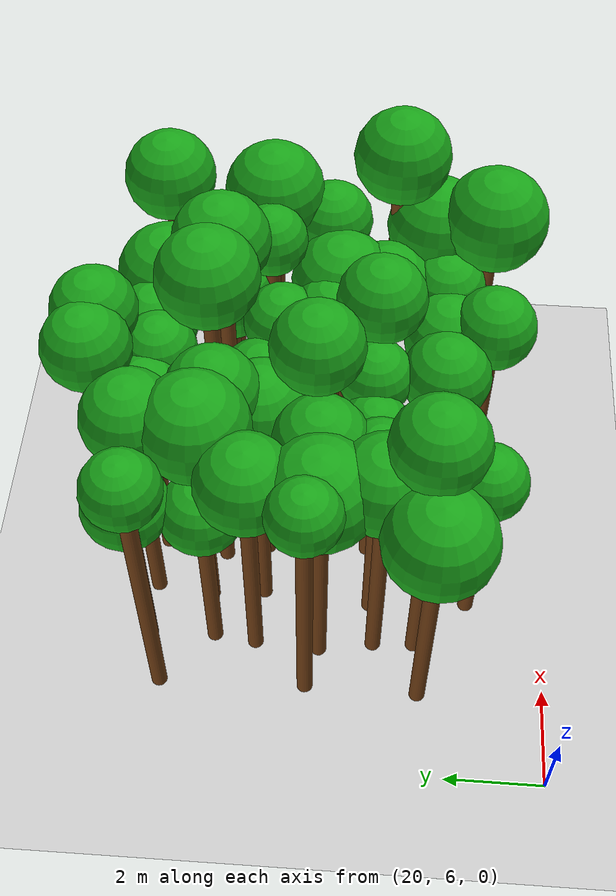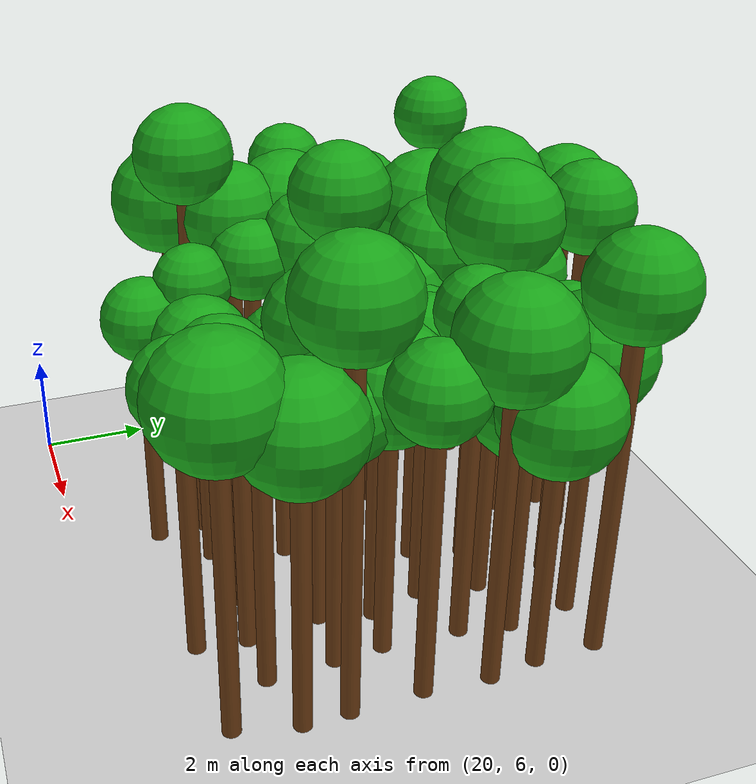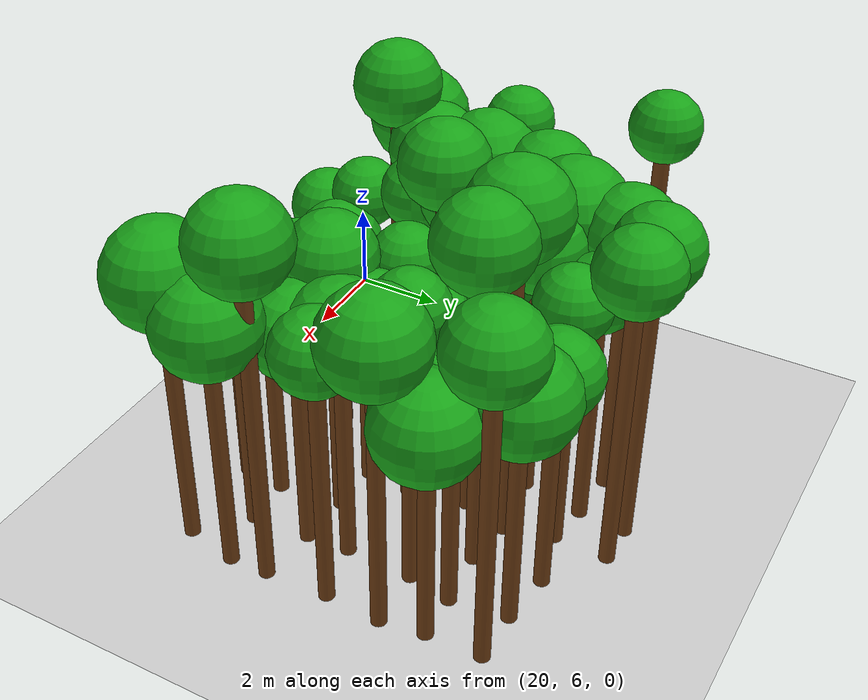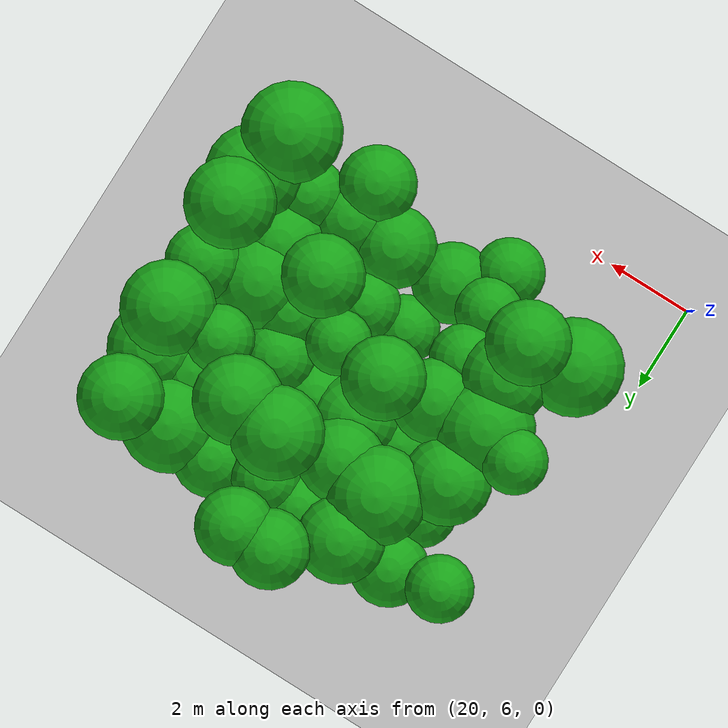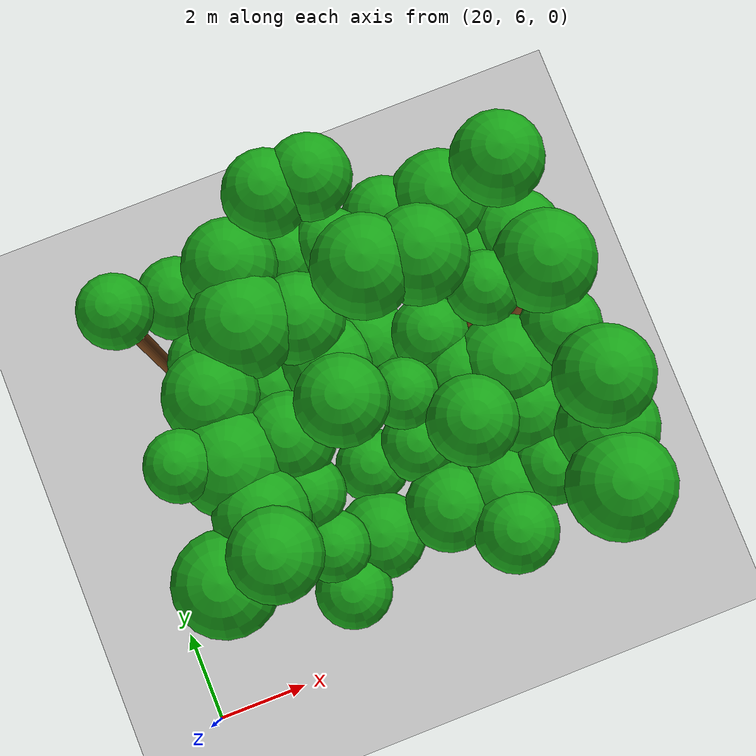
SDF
<sdf version="1.6">
 <world name="forest_world">
  <include><uri>model://sun</uri></include>
  <include><uri>model://ground_plane</uri></include>
  <model name="tree_2597_trunk">
   <static>true</static>
   <pose>21.78 8.55 2.72 0 0 0</pose>
   <link name="link">
    <collision name="collision">
     <geometry><cylinder><radius>0.16</radius><length>5.45</length></cylinder></geometry>
    </collision>
    <visual name="visual">
     <geometry><cylinder><radius>0.16</radius><length>5.45</length></cylinder></geometry>
     <material><ambient>0.35 0.20 0.05 1</ambient><diffuse>0.45 0.25 0.08 1</diffuse></material>
    </visual>
   </link>
  </model>
  <model name="tree_2597_leaf">
   <static>true</static>
   <pose>21.78 8.55 6.07 0 0 0</pose>
   <link name="link">
    <collision name="collision"><geometry><sphere><radius>1.04</radius></sphere></geometry></collision>
    <visual name="visual">
     <geometry><sphere><radius>1.04</radius></sphere></geometry>
     <material><ambient>0.05 0.45 0.05 1</ambient><diffuse>0.10 0.65 0.10 1</diffuse></material>
    </visual>
   </link>
  </model>
  <model name="tree_2599_trunk">
   <static>true</static>
   <pose>21.82 10.85 3.06 0 0 0</pose>
   <link name="link">
    <collision name="collision">
     <geometry><cylinder><radius>0.16</radius><length>6.13</length></cylinder></geometry>
    </collision>
    <visual name="visual">
     <geometry><cylinder><radius>0.16</radius><length>6.13</length></cylinder></geometry>
     <material><ambient>0.35 0.20 0.05 1</ambient><diffuse>0.45 0.25 0.08 1</diffuse></material>
    </visual>
   </link>
  </model>
  <model name="tree_2599_leaf">
   <static>true</static>
   <pose>21.82 10.85 6.55 0 0 0</pose>
   <link name="link">
    <collision name="collision"><geometry><sphere><radius>0.70</radius></sphere></geometry></collision>
    <visual name="visual">
     <geometry><sphere><radius>0.70</radius></sphere></geometry>
     <material><ambient>0.05 0.45 0.05 1</ambient><diffuse>0.10 0.65 0.10 1</diffuse></material>
    </visual>
   </link>
  </model>
  <model name="tree_2602_trunk">
   <static>true</static>
   <pose>21.76 13.84 3.36 0 0 0</pose>
   <link name="link">
    <collision name="collision">
     <geometry><cylinder><radius>0.16</radius><length>6.72</length></cylinder></geometry>
    </collision>
    <visual name="visual">
     <geometry><cylinder><radius>0.16</radius><length>6.72</length></cylinder></geometry>
     <material><ambient>0.35 0.20 0.05 1</ambient><diffuse>0.45 0.25 0.08 1</diffuse></material>
    </visual>
   </link>
  </model>
  <model name="tree_2602_leaf">
   <static>true</static>
   <pose>21.76 13.84 7.14 0 0 0</pose>
   <link name="link">
    <collision name="collision"><geometry><sphere><radius>0.71</radius></sphere></geometry></collision>
    <visual name="visual">
     <geometry><sphere><radius>0.71</radius></sphere></geometry>
     <material><ambient>0.05 0.45 0.05 1</ambient><diffuse>0.10 0.65 0.10 1</diffuse></material>
    </visual>
   </link>
  </model>
  <model name="tree_2652_trunk">
   <static>true</static>
   <pose>22.90 8.66 3.38 0 0 0</pose>
   <link name="link">
    <collision name="collision">
     <geometry><cylinder><radius>0.16</radius><length>6.76</length></cylinder></geometry>
    </collision>
    <visual name="visual">
     <geometry><cylinder><radius>0.16</radius><length>6.76</length></cylinder></geometry>
     <material><ambient>0.35 0.20 0.05 1</ambient><diffuse>0.45 0.25 0.08 1</diffuse></material>
    </visual>
   </link>
  </model>
  <model name="tree_2652_leaf">
   <static>true</static>
   <pose>22.90 8.66 7.30 0 0 0</pose>
   <link name="link">
    <collision name="collision"><geometry><sphere><radius>0.89</radius></sphere></geometry></collision>
    <visual name="visual">
     <geometry><sphere><radius>0.89</radius></sphere></geometry>
     <material><ambient>0.05 0.45 0.05 1</ambient><diffuse>0.10 0.65 0.10 1</diffuse></material>
    </visual>
   </link>
  </model>
  <model name="tree_2653_trunk">
   <static>true</static>
   <pose>22.86 9.50 2.75 0 0 0</pose>
   <link name="link">
    <collision name="collision">
     <geometry><cylinder><radius>0.16</radius><length>5.50</length></cylinder></geometry>
    </collision>
    <visual name="visual">
     <geometry><cylinder><radius>0.16</radius><length>5.50</length></cylinder></geometry>
     <material><ambient>0.35 0.20 0.05 1</ambient><diffuse>0.45 0.25 0.08 1</diffuse></material>
    </visual>
   </link>
  </model>
  <model name="tree_2653_leaf">
   <static>true</static>
   <pose>22.86 9.50 6.07 0 0 0</pose>
   <link name="link">
    <collision name="collision"><geometry><sphere><radius>0.95</radius></sphere></geometry></collision>
    <visual name="visual">
     <geometry><sphere><radius>0.95</radius></sphere></geometry>
     <material><ambient>0.05 0.45 0.05 1</ambient><diffuse>0.10 0.65 0.10 1</diffuse></material>
    </visual>
   </link>
  </model>
  <model name="tree_2654_trunk">
   <static>true</static>
   <pose>22.67 10.62 2.66 0 0 0</pose>
   <link name="link">
    <collision name="collision">
     <geometry><cylinder><radius>0.16</radius><length>5.33</length></cylinder></geometry>
    </collision>
    <visual name="visual">
     <geometry><cylinder><radius>0.16</radius><length>5.33</length></cylinder></geometry>
     <material><ambient>0.35 0.20 0.05 1</ambient><diffuse>0.45 0.25 0.08 1</diffuse></material>
    </visual>
   </link>
  </model>
  <model name="tree_2654_leaf">
   <static>true</static>
   <pose>22.67 10.62 5.97 0 0 0</pose>
   <link name="link">
    <collision name="collision"><geometry><sphere><radius>1.07</radius></sphere></geometry></collision>
    <visual name="visual">
     <geometry><sphere><radius>1.07</radius></sphere></geometry>
     <material><ambient>0.05 0.45 0.05 1</ambient><diffuse>0.10 0.65 0.10 1</diffuse></material>
    </visual>
   </link>
  </model>
  <model name="tree_2655_trunk">
   <static>true</static>
   <pose>22.75 11.94 2.72 0 0 0</pose>
   <link name="link">
    <collision name="collision">
     <geometry><cylinder><radius>0.16</radius><length>5.45</length></cylinder></geometry>
    </collision>
    <visual name="visual">
     <geometry><cylinder><radius>0.16</radius><length>5.45</length></cylinder></geometry>
     <material><ambient>0.35 0.20 0.05 1</ambient><diffuse>0.45 0.25 0.08 1</diffuse></material>
    </visual>
   </link>
  </model>
  <model name="tree_2655_leaf">
   <static>true</static>
   <pose>22.75 11.94 6.01 0 0 0</pose>
   <link name="link">
    <collision name="collision"><geometry><sphere><radius>0.94</radius></sphere></geometry></collision>
    <visual name="visual">
     <geometry><sphere><radius>0.94</radius></sphere></geometry>
     <material><ambient>0.05 0.45 0.05 1</ambient><diffuse>0.10 0.65 0.10 1</diffuse></material>
    </visual>
   </link>
  </model>
  <model name="tree_2656_trunk">
   <static>true</static>
   <pose>22.86 12.80 2.16 0 0 0</pose>
   <link name="link">
    <collision name="collision">
     <geometry><cylinder><radius>0.16</radius><length>4.31</length></cylinder></geometry>
    </collision>
    <visual name="visual">
     <geometry><cylinder><radius>0.16</radius><length>4.31</length></cylinder></geometry>
     <material><ambient>0.35 0.20 0.05 1</ambient><diffuse>0.45 0.25 0.08 1</diffuse></material>
    </visual>
   </link>
  </model>
  <model name="tree_2656_leaf">
   <static>true</static>
   <pose>22.86 12.80 4.79 0 0 0</pose>
   <link name="link">
    <collision name="collision"><geometry><sphere><radius>0.80</radius></sphere></geometry></collision>
    <visual name="visual">
     <geometry><sphere><radius>0.80</radius></sphere></geometry>
     <material><ambient>0.05 0.45 0.05 1</ambient><diffuse>0.10 0.65 0.10 1</diffuse></material>
    </visual>
   </link>
  </model>
  <model name="tree_2657_trunk">
   <static>true</static>
   <pose>22.78 14.15 2.26 0 0 0</pose>
   <link name="link">
    <collision name="collision">
     <geometry><cylinder><radius>0.16</radius><length>4.52</length></cylinder></geometry>
    </collision>
    <visual name="visual">
     <geometry><cylinder><radius>0.16</radius><length>4.52</length></cylinder></geometry>
     <material><ambient>0.35 0.20 0.05 1</ambient><diffuse>0.45 0.25 0.08 1</diffuse></material>
    </visual>
   </link>
  </model>
  <model name="tree_2657_leaf">
   <static>true</static>
   <pose>22.78 14.15 5.02 0 0 0</pose>
   <link name="link">
    <collision name="collision"><geometry><sphere><radius>0.84</radius></sphere></geometry></collision>
    <visual name="visual">
     <geometry><sphere><radius>0.84</radius></sphere></geometry>
     <material><ambient>0.05 0.45 0.05 1</ambient><diffuse>0.10 0.65 0.10 1</diffuse></material>
    </visual>
   </link>
  </model>
  <model name="tree_2706_trunk">
   <static>true</static>
   <pose>23.92 7.57 2.14 0 0 0</pose>
   <link name="link">
    <collision name="collision">
     <geometry><cylinder><radius>0.16</radius><length>4.28</length></cylinder></geometry>
    </collision>
    <visual name="visual">
     <geometry><cylinder><radius>0.16</radius><length>4.28</length></cylinder></geometry>
     <material><ambient>0.35 0.20 0.05 1</ambient><diffuse>0.45 0.25 0.08 1</diffuse></material>
    </visual>
   </link>
  </model>
  <model name="tree_2706_leaf">
   <static>true</static>
   <pose>23.92 7.57 4.74 0 0 0</pose>
   <link name="link">
    <collision name="collision"><geometry><sphere><radius>0.76</radius></sphere></geometry></collision>
    <visual name="visual">
     <geometry><sphere><radius>0.76</radius></sphere></geometry>
     <material><ambient>0.05 0.45 0.05 1</ambient><diffuse>0.10 0.65 0.10 1</diffuse></material>
    </visual>
   </link>
  </model>
  <model name="tree_2707_trunk">
   <static>true</static>
   <pose>23.89 8.49 2.43 0 0 0</pose>
   <link name="link">
    <collision name="collision">
     <geometry><cylinder><radius>0.16</radius><length>4.87</length></cylinder></geometry>
    </collision>
    <visual name="visual">
     <geometry><cylinder><radius>0.16</radius><length>4.87</length></cylinder></geometry>
     <material><ambient>0.35 0.20 0.05 1</ambient><diffuse>0.45 0.25 0.08 1</diffuse></material>
    </visual>
   </link>
  </model>
  <model name="tree_2707_leaf">
   <static>true</static>
   <pose>23.89 8.49 5.29 0 0 0</pose>
   <link name="link">
    <collision name="collision"><geometry><sphere><radius>0.71</radius></sphere></geometry></collision>
    <visual name="visual">
     <geometry><sphere><radius>0.71</radius></sphere></geometry>
     <material><ambient>0.05 0.45 0.05 1</ambient><diffuse>0.10 0.65 0.10 1</diffuse></material>
    </visual>
   </link>
  </model>
  <model name="tree_2708_trunk">
   <static>true</static>
   <pose>23.77 9.61 2.54 0 0 0</pose>
   <link name="link">
    <collision name="collision">
     <geometry><cylinder><radius>0.16</radius><length>5.08</length></cylinder></geometry>
    </collision>
    <visual name="visual">
     <geometry><cylinder><radius>0.16</radius><length>5.08</length></cylinder></geometry>
     <material><ambient>0.35 0.20 0.05 1</ambient><diffuse>0.45 0.25 0.08 1</diffuse></material>
    </visual>
   </link>
  </model>
  <model name="tree_2708_leaf">
   <static>true</static>
   <pose>23.77 9.61 5.54 0 0 0</pose>
   <link name="link">
    <collision name="collision"><geometry><sphere><radius>0.76</radius></sphere></geometry></collision>
    <visual name="visual">
     <geometry><sphere><radius>0.76</radius></sphere></geometry>
     <material><ambient>0.05 0.45 0.05 1</ambient><diffuse>0.10 0.65 0.10 1</diffuse></material>
    </visual>
   </link>
  </model>
  <model name="tree_2709_trunk">
   <static>true</static>
   <pose>23.85 10.69 2.63 0 0 0</pose>
   <link name="link">
    <collision name="collision">
     <geometry><cylinder><radius>0.16</radius><length>5.26</length></cylinder></geometry>
    </collision>
    <visual name="visual">
     <geometry><cylinder><radius>0.16</radius><length>5.26</length></cylinder></geometry>
     <material><ambient>0.35 0.20 0.05 1</ambient><diffuse>0.45 0.25 0.08 1</diffuse></material>
    </visual>
   </link>
  </model>
  <model name="tree_2709_leaf">
   <static>true</static>
   <pose>23.85 10.69 5.81 0 0 0</pose>
   <link name="link">
    <collision name="collision"><geometry><sphere><radius>0.91</radius></sphere></geometry></collision>
    <visual name="visual">
     <geometry><sphere><radius>0.91</radius></sphere></geometry>
     <material><ambient>0.05 0.45 0.05 1</ambient><diffuse>0.10 0.65 0.10 1</diffuse></material>
    </visual>
   </link>
  </model>
  <model name="tree_2710_trunk">
   <static>true</static>
   <pose>23.95 11.85 2.00 0 0 0</pose>
   <link name="link">
    <collision name="collision">
     <geometry><cylinder><radius>0.16</radius><length>4.00</length></cylinder></geometry>
    </collision>
    <visual name="visual">
     <geometry><cylinder><radius>0.16</radius><length>4.00</length></cylinder></geometry>
     <material><ambient>0.35 0.20 0.05 1</ambient><diffuse>0.45 0.25 0.08 1</diffuse></material>
    </visual>
   </link>
  </model>
  <model name="tree_2710_leaf">
   <static>true</static>
   <pose>23.95 11.85 4.57 0 0 0</pose>
   <link name="link">
    <collision name="collision"><geometry><sphere><radius>0.94</radius></sphere></geometry></collision>
    <visual name="visual">
     <geometry><sphere><radius>0.94</radius></sphere></geometry>
     <material><ambient>0.05 0.45 0.05 1</ambient><diffuse>0.10 0.65 0.10 1</diffuse></material>
    </visual>
   </link>
  </model>
  <model name="tree_2711_trunk">
   <static>true</static>
   <pose>23.82 12.96 2.74 0 0 0</pose>
   <link name="link">
    <collision name="collision">
     <geometry><cylinder><radius>0.16</radius><length>5.48</length></cylinder></geometry>
    </collision>
    <visual name="visual">
     <geometry><cylinder><radius>0.16</radius><length>5.48</length></cylinder></geometry>
     <material><ambient>0.35 0.20 0.05 1</ambient><diffuse>0.45 0.25 0.08 1</diffuse></material>
    </visual>
   </link>
  </model>
  <model name="tree_2711_leaf">
   <static>true</static>
   <pose>23.82 12.96 6.12 0 0 0</pose>
   <link name="link">
    <collision name="collision"><geometry><sphere><radius>1.06</radius></sphere></geometry></collision>
    <visual name="visual">
     <geometry><sphere><radius>1.06</radius></sphere></geometry>
     <material><ambient>0.05 0.45 0.05 1</ambient><diffuse>0.10 0.65 0.10 1</diffuse></material>
    </visual>
   </link>
  </model>
  <model name="tree_2712_trunk">
   <static>true</static>
   <pose>23.97 14.13 2.76 0 0 0</pose>
   <link name="link">
    <collision name="collision">
     <geometry><cylinder><radius>0.16</radius><length>5.52</length></cylinder></geometry>
    </collision>
    <visual name="visual">
     <geometry><cylinder><radius>0.16</radius><length>5.52</length></cylinder></geometry>
     <material><ambient>0.35 0.20 0.05 1</ambient><diffuse>0.45 0.25 0.08 1</diffuse></material>
    </visual>
   </link>
  </model>
  <model name="tree_2712_leaf">
   <static>true</static>
   <pose>23.97 14.13 6.08 0 0 0</pose>
   <link name="link">
    <collision name="collision"><geometry><sphere><radius>0.93</radius></sphere></geometry></collision>
    <visual name="visual">
     <geometry><sphere><radius>0.93</radius></sphere></geometry>
     <material><ambient>0.05 0.45 0.05 1</ambient><diffuse>0.10 0.65 0.10 1</diffuse></material>
    </visual>
   </link>
  </model>
  <model name="tree_2762_trunk">
   <static>true</static>
   <pose>24.82 8.38 2.02 0 0 0</pose>
   <link name="link">
    <collision name="collision">
     <geometry><cylinder><radius>0.16</radius><length>4.04</length></cylinder></geometry>
    </collision>
    <visual name="visual">
     <geometry><cylinder><radius>0.16</radius><length>4.04</length></cylinder></geometry>
     <material><ambient>0.35 0.20 0.05 1</ambient><diffuse>0.45 0.25 0.08 1</diffuse></material>
    </visual>
   </link>
  </model>
  <model name="tree_2762_leaf">
   <static>true</static>
   <pose>24.82 8.38 4.56 0 0 0</pose>
   <link name="link">
    <collision name="collision"><geometry><sphere><radius>0.88</radius></sphere></geometry></collision>
    <visual name="visual">
     <geometry><sphere><radius>0.88</radius></sphere></geometry>
     <material><ambient>0.05 0.45 0.05 1</ambient><diffuse>0.10 0.65 0.10 1</diffuse></material>
    </visual>
   </link>
  </model>
  <model name="tree_2763_trunk">
   <static>true</static>
   <pose>25.15 9.73 2.03 0 0 0</pose>
   <link name="link">
    <collision name="collision">
     <geometry><cylinder><radius>0.16</radius><length>4.05</length></cylinder></geometry>
    </collision>
    <visual name="visual">
     <geometry><cylinder><radius>0.16</radius><length>4.05</length></cylinder></geometry>
     <material><ambient>0.35 0.20 0.05 1</ambient><diffuse>0.45 0.25 0.08 1</diffuse></material>
    </visual>
   </link>
  </model>
  <model name="tree_2763_leaf">
   <static>true</static>
   <pose>25.15 9.73 4.50 0 0 0</pose>
   <link name="link">
    <collision name="collision"><geometry><sphere><radius>0.74</radius></sphere></geometry></collision>
    <visual name="visual">
     <geometry><sphere><radius>0.74</radius></sphere></geometry>
     <material><ambient>0.05 0.45 0.05 1</ambient><diffuse>0.10 0.65 0.10 1</diffuse></material>
    </visual>
   </link>
  </model>
  <model name="tree_2764_trunk">
   <static>true</static>
   <pose>25.00 10.83 3.29 0 0 0</pose>
   <link name="link">
    <collision name="collision">
     <geometry><cylinder><radius>0.16</radius><length>6.57</length></cylinder></geometry>
    </collision>
    <visual name="visual">
     <geometry><cylinder><radius>0.16</radius><length>6.57</length></cylinder></geometry>
     <material><ambient>0.35 0.20 0.05 1</ambient><diffuse>0.45 0.25 0.08 1</diffuse></material>
    </visual>
   </link>
  </model>
  <model name="tree_2764_leaf">
   <static>true</static>
   <pose>25.00 10.83 7.10 0 0 0</pose>
   <link name="link">
    <collision name="collision"><geometry><sphere><radius>0.88</radius></sphere></geometry></collision>
    <visual name="visual">
     <geometry><sphere><radius>0.88</radius></sphere></geometry>
     <material><ambient>0.05 0.45 0.05 1</ambient><diffuse>0.10 0.65 0.10 1</diffuse></material>
    </visual>
   </link>
  </model>
  <model name="tree_2765_trunk">
   <static>true</static>
   <pose>25.06 11.86 2.30 0 0 0</pose>
   <link name="link">
    <collision name="collision">
     <geometry><cylinder><radius>0.16</radius><length>4.60</length></cylinder></geometry>
    </collision>
    <visual name="visual">
     <geometry><cylinder><radius>0.16</radius><length>4.60</length></cylinder></geometry>
     <material><ambient>0.35 0.20 0.05 1</ambient><diffuse>0.45 0.25 0.08 1</diffuse></material>
    </visual>
   </link>
  </model>
  <model name="tree_2765_leaf">
   <static>true</static>
   <pose>25.06 11.86 5.16 0 0 0</pose>
   <link name="link">
    <collision name="collision"><geometry><sphere><radius>0.94</radius></sphere></geometry></collision>
    <visual name="visual">
     <geometry><sphere><radius>0.94</radius></sphere></geometry>
     <material><ambient>0.05 0.45 0.05 1</ambient><diffuse>0.10 0.65 0.10 1</diffuse></material>
    </visual>
   </link>
  </model>
  <model name="tree_2766_trunk">
   <static>true</static>
   <pose>24.83 12.75 2.65 0 0 0</pose>
   <link name="link">
    <collision name="collision">
     <geometry><cylinder><radius>0.16</radius><length>5.30</length></cylinder></geometry>
    </collision>
    <visual name="visual">
     <geometry><cylinder><radius>0.16</radius><length>5.30</length></cylinder></geometry>
     <material><ambient>0.35 0.20 0.05 1</ambient><diffuse>0.45 0.25 0.08 1</diffuse></material>
    </visual>
   </link>
  </model>
  <model name="tree_2766_leaf">
   <static>true</static>
   <pose>24.83 12.75 5.84 0 0 0</pose>
   <link name="link">
    <collision name="collision"><geometry><sphere><radius>0.91</radius></sphere></geometry></collision>
    <visual name="visual">
     <geometry><sphere><radius>0.91</radius></sphere></geometry>
     <material><ambient>0.05 0.45 0.05 1</ambient><diffuse>0.10 0.65 0.10 1</diffuse></material>
    </visual>
   </link>
  </model>
  <model name="tree_2767_trunk">
   <static>true</static>
   <pose>25.06 14.05 2.47 0 0 0</pose>
   <link name="link">
    <collision name="collision">
     <geometry><cylinder><radius>0.16</radius><length>4.93</length></cylinder></geometry>
    </collision>
    <visual name="visual">
     <geometry><cylinder><radius>0.16</radius><length>4.93</length></cylinder></geometry>
     <material><ambient>0.35 0.20 0.05 1</ambient><diffuse>0.45 0.25 0.08 1</diffuse></material>
    </visual>
   </link>
  </model>
  <model name="tree_2767_leaf">
   <static>true</static>
   <pose>25.06 14.05 5.39 0 0 0</pose>
   <link name="link">
    <collision name="collision"><geometry><sphere><radius>0.76</radius></sphere></geometry></collision>
    <visual name="visual">
     <geometry><sphere><radius>0.76</radius></sphere></geometry>
     <material><ambient>0.05 0.45 0.05 1</ambient><diffuse>0.10 0.65 0.10 1</diffuse></material>
    </visual>
   </link>
  </model>
  <model name="tree_2768_trunk">
   <static>true</static>
   <pose>25.11 15.03 3.06 0 0 0</pose>
   <link name="link">
    <collision name="collision">
     <geometry><cylinder><radius>0.16</radius><length>6.12</length></cylinder></geometry>
    </collision>
    <visual name="visual">
     <geometry><cylinder><radius>0.16</radius><length>6.12</length></cylinder></geometry>
     <material><ambient>0.35 0.20 0.05 1</ambient><diffuse>0.45 0.25 0.08 1</diffuse></material>
    </visual>
   </link>
  </model>
  <model name="tree_2768_leaf">
   <static>true</static>
   <pose>25.11 15.03 6.63 0 0 0</pose>
   <link name="link">
    <collision name="collision"><geometry><sphere><radius>0.85</radius></sphere></geometry></collision>
    <visual name="visual">
     <geometry><sphere><radius>0.85</radius></sphere></geometry>
     <material><ambient>0.05 0.45 0.05 1</ambient><diffuse>0.10 0.65 0.10 1</diffuse></material>
    </visual>
   </link>
  </model>
  <model name="tree_2817_trunk">
   <static>true</static>
   <pose>26.25 8.39 2.17 0 0 0</pose>
   <link name="link">
    <collision name="collision">
     <geometry><cylinder><radius>0.16</radius><length>4.33</length></cylinder></geometry>
    </collision>
    <visual name="visual">
     <geometry><cylinder><radius>0.16</radius><length>4.33</length></cylinder></geometry>
     <material><ambient>0.35 0.20 0.05 1</ambient><diffuse>0.45 0.25 0.08 1</diffuse></material>
    </visual>
   </link>
  </model>
  <model name="tree_2817_leaf">
   <static>true</static>
   <pose>26.25 8.39 4.87 0 0 0</pose>
   <link name="link">
    <collision name="collision"><geometry><sphere><radius>0.89</radius></sphere></geometry></collision>
    <visual name="visual">
     <geometry><sphere><radius>0.89</radius></sphere></geometry>
     <material><ambient>0.05 0.45 0.05 1</ambient><diffuse>0.10 0.65 0.10 1</diffuse></material>
    </visual>
   </link>
  </model>
  <model name="tree_2818_trunk">
   <static>true</static>
   <pose>26.12 9.76 2.23 0 0 0</pose>
   <link name="link">
    <collision name="collision">
     <geometry><cylinder><radius>0.16</radius><length>4.46</length></cylinder></geometry>
    </collision>
    <visual name="visual">
     <geometry><cylinder><radius>0.16</radius><length>4.46</length></cylinder></geometry>
     <material><ambient>0.35 0.20 0.05 1</ambient><diffuse>0.45 0.25 0.08 1</diffuse></material>
    </visual>
   </link>
  </model>
  <model name="tree_2818_leaf">
   <static>true</static>
   <pose>26.12 9.76 4.91 0 0 0</pose>
   <link name="link">
    <collision name="collision"><geometry><sphere><radius>0.75</radius></sphere></geometry></collision>
    <visual name="visual">
     <geometry><sphere><radius>0.75</radius></sphere></geometry>
     <material><ambient>0.05 0.45 0.05 1</ambient><diffuse>0.10 0.65 0.10 1</diffuse></material>
    </visual>
   </link>
  </model>
  <model name="tree_2819_trunk">
   <static>true</static>
   <pose>26.17 10.71 2.63 0 0 0</pose>
   <link name="link">
    <collision name="collision">
     <geometry><cylinder><radius>0.16</radius><length>5.26</length></cylinder></geometry>
    </collision>
    <visual name="visual">
     <geometry><cylinder><radius>0.16</radius><length>5.26</length></cylinder></geometry>
     <material><ambient>0.35 0.20 0.05 1</ambient><diffuse>0.45 0.25 0.08 1</diffuse></material>
    </visual>
   </link>
  </model>
  <model name="tree_2819_leaf">
   <static>true</static>
   <pose>26.17 10.71 5.68 0 0 0</pose>
   <link name="link">
    <collision name="collision"><geometry><sphere><radius>0.70</radius></sphere></geometry></collision>
    <visual name="visual">
     <geometry><sphere><radius>0.70</radius></sphere></geometry>
     <material><ambient>0.05 0.45 0.05 1</ambient><diffuse>0.10 0.65 0.10 1</diffuse></material>
    </visual>
   </link>
  </model>
  <model name="tree_2820_trunk">
   <static>true</static>
   <pose>25.96 11.95 2.08 0 0 0</pose>
   <link name="link">
    <collision name="collision">
     <geometry><cylinder><radius>0.16</radius><length>4.15</length></cylinder></geometry>
    </collision>
    <visual name="visual">
     <geometry><cylinder><radius>0.16</radius><length>4.15</length></cylinder></geometry>
     <material><ambient>0.35 0.20 0.05 1</ambient><diffuse>0.45 0.25 0.08 1</diffuse></material>
    </visual>
   </link>
  </model>
  <model name="tree_2820_leaf">
   <static>true</static>
   <pose>25.96 11.95 4.70 0 0 0</pose>
   <link name="link">
    <collision name="collision"><geometry><sphere><radius>0.92</radius></sphere></geometry></collision>
    <visual name="visual">
     <geometry><sphere><radius>0.92</radius></sphere></geometry>
     <material><ambient>0.05 0.45 0.05 1</ambient><diffuse>0.10 0.65 0.10 1</diffuse></material>
    </visual>
   </link>
  </model>
  <model name="tree_2821_trunk">
   <static>true</static>
   <pose>26.24 12.91 3.41 0 0 0</pose>
   <link name="link">
    <collision name="collision">
     <geometry><cylinder><radius>0.16</radius><length>6.81</length></cylinder></geometry>
    </collision>
    <visual name="visual">
     <geometry><cylinder><radius>0.16</radius><length>6.81</length></cylinder></geometry>
     <material><ambient>0.35 0.20 0.05 1</ambient><diffuse>0.45 0.25 0.08 1</diffuse></material>
    </visual>
   </link>
  </model>
  <model name="tree_2821_leaf">
   <static>true</static>
   <pose>26.24 12.91 7.40 0 0 0</pose>
   <link name="link">
    <collision name="collision"><geometry><sphere><radius>0.98</radius></sphere></geometry></collision>
    <visual name="visual">
     <geometry><sphere><radius>0.98</radius></sphere></geometry>
     <material><ambient>0.05 0.45 0.05 1</ambient><diffuse>0.10 0.65 0.10 1</diffuse></material>
    </visual>
   </link>
  </model>
  <model name="tree_2822_trunk">
   <static>true</static>
   <pose>25.94 13.90 2.59 0 0 0</pose>
   <link name="link">
    <collision name="collision">
     <geometry><cylinder><radius>0.16</radius><length>5.19</length></cylinder></geometry>
    </collision>
    <visual name="visual">
     <geometry><cylinder><radius>0.16</radius><length>5.19</length></cylinder></geometry>
     <material><ambient>0.35 0.20 0.05 1</ambient><diffuse>0.45 0.25 0.08 1</diffuse></material>
    </visual>
   </link>
  </model>
  <model name="tree_2822_leaf">
   <static>true</static>
   <pose>25.94 13.90 5.63 0 0 0</pose>
   <link name="link">
    <collision name="collision"><geometry><sphere><radius>0.74</radius></sphere></geometry></collision>
    <visual name="visual">
     <geometry><sphere><radius>0.74</radius></sphere></geometry>
     <material><ambient>0.05 0.45 0.05 1</ambient><diffuse>0.10 0.65 0.10 1</diffuse></material>
    </visual>
   </link>
  </model>
  <model name="tree_2823_trunk">
   <static>true</static>
   <pose>25.96 15.02 3.09 0 0 0</pose>
   <link name="link">
    <collision name="collision">
     <geometry><cylinder><radius>0.16</radius><length>6.18</length></cylinder></geometry>
    </collision>
    <visual name="visual">
     <geometry><cylinder><radius>0.16</radius><length>6.18</length></cylinder></geometry>
     <material><ambient>0.35 0.20 0.05 1</ambient><diffuse>0.45 0.25 0.08 1</diffuse></material>
    </visual>
   </link>
  </model>
  <model name="tree_2823_leaf">
   <static>true</static>
   <pose>25.96 15.02 6.67 0 0 0</pose>
   <link name="link">
    <collision name="collision"><geometry><sphere><radius>0.83</radius></sphere></geometry></collision>
    <visual name="visual">
     <geometry><sphere><radius>0.83</radius></sphere></geometry>
     <material><ambient>0.05 0.45 0.05 1</ambient><diffuse>0.10 0.65 0.10 1</diffuse></material>
    </visual>
   </link>
  </model>
  <model name="tree_2871_trunk">
   <static>true</static>
   <pose>27.25 7.49 2.36 0 0 0</pose>
   <link name="link">
    <collision name="collision">
     <geometry><cylinder><radius>0.16</radius><length>4.71</length></cylinder></geometry>
    </collision>
    <visual name="visual">
     <geometry><cylinder><radius>0.16</radius><length>4.71</length></cylinder></geometry>
     <material><ambient>0.35 0.20 0.05 1</ambient><diffuse>0.45 0.25 0.08 1</diffuse></material>
    </visual>
   </link>
  </model>
  <model name="tree_2871_leaf">
   <static>true</static>
   <pose>27.25 7.49 5.21 0 0 0</pose>
   <link name="link">
    <collision name="collision"><geometry><sphere><radius>0.84</radius></sphere></geometry></collision>
    <visual name="visual">
     <geometry><sphere><radius>0.84</radius></sphere></geometry>
     <material><ambient>0.05 0.45 0.05 1</ambient><diffuse>0.10 0.65 0.10 1</diffuse></material>
    </visual>
   </link>
  </model>
  <model name="tree_2872_trunk">
   <static>true</static>
   <pose>27.35 8.38 2.13 0 0 0</pose>
   <link name="link">
    <collision name="collision">
     <geometry><cylinder><radius>0.16</radius><length>4.26</length></cylinder></geometry>
    </collision>
    <visual name="visual">
     <geometry><cylinder><radius>0.16</radius><length>4.26</length></cylinder></geometry>
     <material><ambient>0.35 0.20 0.05 1</ambient><diffuse>0.45 0.25 0.08 1</diffuse></material>
    </visual>
   </link>
  </model>
  <model name="tree_2872_leaf">
   <static>true</static>
   <pose>27.35 8.38 4.79 0 0 0</pose>
   <link name="link">
    <collision name="collision"><geometry><sphere><radius>0.89</radius></sphere></geometry></collision>
    <visual name="visual">
     <geometry><sphere><radius>0.89</radius></sphere></geometry>
     <material><ambient>0.05 0.45 0.05 1</ambient><diffuse>0.10 0.65 0.10 1</diffuse></material>
    </visual>
   </link>
  </model>
  <model name="tree_2873_trunk">
   <static>true</static>
   <pose>27.18 9.72 2.72 0 0 0</pose>
   <link name="link">
    <collision name="collision">
     <geometry><cylinder><radius>0.16</radius><length>5.44</length></cylinder></geometry>
    </collision>
    <visual name="visual">
     <geometry><cylinder><radius>0.16</radius><length>5.44</length></cylinder></geometry>
     <material><ambient>0.35 0.20 0.05 1</ambient><diffuse>0.45 0.25 0.08 1</diffuse></material>
    </visual>
   </link>
  </model>
  <model name="tree_2873_leaf">
   <static>true</static>
   <pose>27.18 9.72 5.98 0 0 0</pose>
   <link name="link">
    <collision name="collision"><geometry><sphere><radius>0.89</radius></sphere></geometry></collision>
    <visual name="visual">
     <geometry><sphere><radius>0.89</radius></sphere></geometry>
     <material><ambient>0.05 0.45 0.05 1</ambient><diffuse>0.10 0.65 0.10 1</diffuse></material>
    </visual>
   </link>
  </model>
  <model name="tree_2874_trunk">
   <static>true</static>
   <pose>27.38 10.67 2.32 0 0 0</pose>
   <link name="link">
    <collision name="collision">
     <geometry><cylinder><radius>0.16</radius><length>4.63</length></cylinder></geometry>
    </collision>
    <visual name="visual">
     <geometry><cylinder><radius>0.16</radius><length>4.63</length></cylinder></geometry>
     <material><ambient>0.35 0.20 0.05 1</ambient><diffuse>0.45 0.25 0.08 1</diffuse></material>
    </visual>
   </link>
  </model>
  <model name="tree_2874_leaf">
   <static>true</static>
   <pose>27.38 10.67 5.15 0 0 0</pose>
   <link name="link">
    <collision name="collision"><geometry><sphere><radius>0.87</radius></sphere></geometry></collision>
    <visual name="visual">
     <geometry><sphere><radius>0.87</radius></sphere></geometry>
     <material><ambient>0.05 0.45 0.05 1</ambient><diffuse>0.10 0.65 0.10 1</diffuse></material>
    </visual>
   </link>
  </model>
  <model name="tree_2875_trunk">
   <static>true</static>
   <pose>27.09 11.64 2.39 0 0 0</pose>
   <link name="link">
    <collision name="collision">
     <geometry><cylinder><radius>0.16</radius><length>4.79</length></cylinder></geometry>
    </collision>
    <visual name="visual">
     <geometry><cylinder><radius>0.16</radius><length>4.79</length></cylinder></geometry>
     <material><ambient>0.35 0.20 0.05 1</ambient><diffuse>0.45 0.25 0.08 1</diffuse></material>
    </visual>
   </link>
  </model>
  <model name="tree_2875_leaf">
   <static>true</static>
   <pose>27.09 11.64 5.26 0 0 0</pose>
   <link name="link">
    <collision name="collision"><geometry><sphere><radius>0.78</radius></sphere></geometry></collision>
    <visual name="visual">
     <geometry><sphere><radius>0.78</radius></sphere></geometry>
     <material><ambient>0.05 0.45 0.05 1</ambient><diffuse>0.10 0.65 0.10 1</diffuse></material>
    </visual>
   </link>
  </model>
  <model name="tree_2876_trunk">
   <static>true</static>
   <pose>27.26 12.77 3.36 0 0 0</pose>
   <link name="link">
    <collision name="collision">
     <geometry><cylinder><radius>0.16</radius><length>6.71</length></cylinder></geometry>
    </collision>
    <visual name="visual">
     <geometry><cylinder><radius>0.16</radius><length>6.71</length></cylinder></geometry>
     <material><ambient>0.35 0.20 0.05 1</ambient><diffuse>0.45 0.25 0.08 1</diffuse></material>
    </visual>
   </link>
  </model>
  <model name="tree_2876_leaf">
   <static>true</static>
   <pose>27.26 12.77 7.28 0 0 0</pose>
   <link name="link">
    <collision name="collision"><geometry><sphere><radius>0.94</radius></sphere></geometry></collision>
    <visual name="visual">
     <geometry><sphere><radius>0.94</radius></sphere></geometry>
     <material><ambient>0.05 0.45 0.05 1</ambient><diffuse>0.10 0.65 0.10 1</diffuse></material>
    </visual>
   </link>
  </model>
  <model name="tree_2877_trunk">
   <static>true</static>
   <pose>27.13 14.17 2.25 0 0 0</pose>
   <link name="link">
    <collision name="collision">
     <geometry><cylinder><radius>0.16</radius><length>4.51</length></cylinder></geometry>
    </collision>
    <visual name="visual">
     <geometry><cylinder><radius>0.16</radius><length>4.51</length></cylinder></geometry>
     <material><ambient>0.35 0.20 0.05 1</ambient><diffuse>0.45 0.25 0.08 1</diffuse></material>
    </visual>
   </link>
  </model>
  <model name="tree_2877_leaf">
   <static>true</static>
   <pose>27.13 14.17 5.02 0 0 0</pose>
   <link name="link">
    <collision name="collision"><geometry><sphere><radius>0.85</radius></sphere></geometry></collision>
    <visual name="visual">
     <geometry><sphere><radius>0.85</radius></sphere></geometry>
     <material><ambient>0.05 0.45 0.05 1</ambient><diffuse>0.10 0.65 0.10 1</diffuse></material>
    </visual>
   </link>
  </model>
  <model name="tree_2927_trunk">
   <static>true</static>
   <pose>28.37 8.42 2.28 0 0 0</pose>
   <link name="link">
    <collision name="collision">
     <geometry><cylinder><radius>0.16</radius><length>4.57</length></cylinder></geometry>
    </collision>
    <visual name="visual">
     <geometry><cylinder><radius>0.16</radius><length>4.57</length></cylinder></geometry>
     <material><ambient>0.35 0.20 0.05 1</ambient><diffuse>0.45 0.25 0.08 1</diffuse></material>
    </visual>
   </link>
  </model>
  <model name="tree_2927_leaf">
   <static>true</static>
   <pose>28.37 8.42 5.04 0 0 0</pose>
   <link name="link">
    <collision name="collision"><geometry><sphere><radius>0.79</radius></sphere></geometry></collision>
    <visual name="visual">
     <geometry><sphere><radius>0.79</radius></sphere></geometry>
     <material><ambient>0.05 0.45 0.05 1</ambient><diffuse>0.10 0.65 0.10 1</diffuse></material>
    </visual>
   </link>
  </model>
  <model name="tree_2928_trunk">
   <static>true</static>
   <pose>28.30 9.64 2.24 0 0 0</pose>
   <link name="link">
    <collision name="collision">
     <geometry><cylinder><radius>0.16</radius><length>4.48</length></cylinder></geometry>
    </collision>
    <visual name="visual">
     <geometry><cylinder><radius>0.16</radius><length>4.48</length></cylinder></geometry>
     <material><ambient>0.35 0.20 0.05 1</ambient><diffuse>0.45 0.25 0.08 1</diffuse></material>
    </visual>
   </link>
  </model>
  <model name="tree_2928_leaf">
   <static>true</static>
   <pose>28.30 9.64 5.05 0 0 0</pose>
   <link name="link">
    <collision name="collision"><geometry><sphere><radius>0.96</radius></sphere></geometry></collision>
    <visual name="visual">
     <geometry><sphere><radius>0.96</radius></sphere></geometry>
     <material><ambient>0.05 0.45 0.05 1</ambient><diffuse>0.10 0.65 0.10 1</diffuse></material>
    </visual>
   </link>
  </model>
  <model name="tree_2929_trunk">
   <static>true</static>
   <pose>28.23 10.53 2.33 0 0 0</pose>
   <link name="link">
    <collision name="collision">
     <geometry><cylinder><radius>0.16</radius><length>4.66</length></cylinder></geometry>
    </collision>
    <visual name="visual">
     <geometry><cylinder><radius>0.16</radius><length>4.66</length></cylinder></geometry>
     <material><ambient>0.35 0.20 0.05 1</ambient><diffuse>0.45 0.25 0.08 1</diffuse></material>
    </visual>
   </link>
  </model>
  <model name="tree_2929_leaf">
   <static>true</static>
   <pose>28.23 10.53 5.28 0 0 0</pose>
   <link name="link">
    <collision name="collision"><geometry><sphere><radius>1.03</radius></sphere></geometry></collision>
    <visual name="visual">
     <geometry><sphere><radius>1.03</radius></sphere></geometry>
     <material><ambient>0.05 0.45 0.05 1</ambient><diffuse>0.10 0.65 0.10 1</diffuse></material>
    </visual>
   </link>
  </model>
  <model name="tree_2930_trunk">
   <static>true</static>
   <pose>28.27 11.94 2.94 0 0 0</pose>
   <link name="link">
    <collision name="collision">
     <geometry><cylinder><radius>0.16</radius><length>5.87</length></cylinder></geometry>
    </collision>
    <visual name="visual">
     <geometry><cylinder><radius>0.16</radius><length>5.87</length></cylinder></geometry>
     <material><ambient>0.35 0.20 0.05 1</ambient><diffuse>0.45 0.25 0.08 1</diffuse></material>
    </visual>
   </link>
  </model>
  <model name="tree_2930_leaf">
   <static>true</static>
   <pose>28.27 11.94 6.30 0 0 0</pose>
   <link name="link">
    <collision name="collision"><geometry><sphere><radius>0.72</radius></sphere></geometry></collision>
    <visual name="visual">
     <geometry><sphere><radius>0.72</radius></sphere></geometry>
     <material><ambient>0.05 0.45 0.05 1</ambient><diffuse>0.10 0.65 0.10 1</diffuse></material>
    </visual>
   </link>
  </model>
  <model name="tree_2931_trunk">
   <static>true</static>
   <pose>28.42 12.85 2.01 0 0 0</pose>
   <link name="link">
    <collision name="collision">
     <geometry><cylinder><radius>0.16</radius><length>4.03</length></cylinder></geometry>
    </collision>
    <visual name="visual">
     <geometry><cylinder><radius>0.16</radius><length>4.03</length></cylinder></geometry>
     <material><ambient>0.35 0.20 0.05 1</ambient><diffuse>0.45 0.25 0.08 1</diffuse></material>
    </visual>
   </link>
  </model>
  <model name="tree_2931_leaf">
   <static>true</static>
   <pose>28.42 12.85 4.67 0 0 0</pose>
   <link name="link">
    <collision name="collision"><geometry><sphere><radius>1.06</radius></sphere></geometry></collision>
    <visual name="visual">
     <geometry><sphere><radius>1.06</radius></sphere></geometry>
     <material><ambient>0.05 0.45 0.05 1</ambient><diffuse>0.10 0.65 0.10 1</diffuse></material>
    </visual>
   </link>
  </model>
  <model name="tree_2932_trunk">
   <static>true</static>
   <pose>28.26 14.03 2.29 0 0 0</pose>
   <link name="link">
    <collision name="collision">
     <geometry><cylinder><radius>0.16</radius><length>4.57</length></cylinder></geometry>
    </collision>
    <visual name="visual">
     <geometry><cylinder><radius>0.16</radius><length>4.57</length></cylinder></geometry>
     <material><ambient>0.35 0.20 0.05 1</ambient><diffuse>0.45 0.25 0.08 1</diffuse></material>
    </visual>
   </link>
  </model>
  <model name="tree_2932_leaf">
   <static>true</static>
   <pose>28.26 14.03 5.20 0 0 0</pose>
   <link name="link">
    <collision name="collision"><geometry><sphere><radius>1.05</radius></sphere></geometry></collision>
    <visual name="visual">
     <geometry><sphere><radius>1.05</radius></sphere></geometry>
     <material><ambient>0.05 0.45 0.05 1</ambient><diffuse>0.10 0.65 0.10 1</diffuse></material>
    </visual>
   </link>
  </model>
  <model name="tree_2981_trunk">
   <static>true</static>
   <pose>29.29 7.56 2.75 0 0 0</pose>
   <link name="link">
    <collision name="collision">
     <geometry><cylinder><radius>0.16</radius><length>5.50</length></cylinder></geometry>
    </collision>
    <visual name="visual">
     <geometry><cylinder><radius>0.16</radius><length>5.50</length></cylinder></geometry>
     <material><ambient>0.35 0.20 0.05 1</ambient><diffuse>0.45 0.25 0.08 1</diffuse></material>
    </visual>
   </link>
  </model>
  <model name="tree_2981_leaf">
   <static>true</static>
   <pose>29.29 7.56 6.14 0 0 0</pose>
   <link name="link">
    <collision name="collision"><geometry><sphere><radius>1.07</radius></sphere></geometry></collision>
    <visual name="visual">
     <geometry><sphere><radius>1.07</radius></sphere></geometry>
     <material><ambient>0.05 0.45 0.05 1</ambient><diffuse>0.10 0.65 0.10 1</diffuse></material>
    </visual>
   </link>
  </model>
  <model name="tree_2982_trunk">
   <static>true</static>
   <pose>29.54 8.67 2.51 0 0 0</pose>
   <link name="link">
    <collision name="collision">
     <geometry><cylinder><radius>0.16</radius><length>5.01</length></cylinder></geometry>
    </collision>
    <visual name="visual">
     <geometry><cylinder><radius>0.16</radius><length>5.01</length></cylinder></geometry>
     <material><ambient>0.35 0.20 0.05 1</ambient><diffuse>0.45 0.25 0.08 1</diffuse></material>
    </visual>
   </link>
  </model>
  <model name="tree_2982_leaf">
   <static>true</static>
   <pose>29.54 8.67 5.63 0 0 0</pose>
   <link name="link">
    <collision name="collision"><geometry><sphere><radius>1.03</radius></sphere></geometry></collision>
    <visual name="visual">
     <geometry><sphere><radius>1.03</radius></sphere></geometry>
     <material><ambient>0.05 0.45 0.05 1</ambient><diffuse>0.10 0.65 0.10 1</diffuse></material>
    </visual>
   </link>
  </model>
  <model name="tree_2983_trunk">
   <static>true</static>
   <pose>29.51 9.48 3.46 0 0 0</pose>
   <link name="link">
    <collision name="collision">
     <geometry><cylinder><radius>0.16</radius><length>6.92</length></cylinder></geometry>
    </collision>
    <visual name="visual">
     <geometry><cylinder><radius>0.16</radius><length>6.92</length></cylinder></geometry>
     <material><ambient>0.35 0.20 0.05 1</ambient><diffuse>0.45 0.25 0.08 1</diffuse></material>
    </visual>
   </link>
  </model>
  <model name="tree_2983_leaf">
   <static>true</static>
   <pose>29.51 9.48 7.49 0 0 0</pose>
   <link name="link">
    <collision name="collision"><geometry><sphere><radius>0.95</radius></sphere></geometry></collision>
    <visual name="visual">
     <geometry><sphere><radius>0.95</radius></sphere></geometry>
     <material><ambient>0.05 0.45 0.05 1</ambient><diffuse>0.10 0.65 0.10 1</diffuse></material>
    </visual>
   </link>
  </model>
  <model name="tree_2984_trunk">
   <static>true</static>
   <pose>29.44 10.79 2.63 0 0 0</pose>
   <link name="link">
    <collision name="collision">
     <geometry><cylinder><radius>0.16</radius><length>5.27</length></cylinder></geometry>
    </collision>
    <visual name="visual">
     <geometry><cylinder><radius>0.16</radius><length>5.27</length></cylinder></geometry>
     <material><ambient>0.35 0.20 0.05 1</ambient><diffuse>0.45 0.25 0.08 1</diffuse></material>
    </visual>
   </link>
  </model>
  <model name="tree_2984_leaf">
   <static>true</static>
   <pose>29.44 10.79 5.75 0 0 0</pose>
   <link name="link">
    <collision name="collision"><geometry><sphere><radius>0.81</radius></sphere></geometry></collision>
    <visual name="visual">
     <geometry><sphere><radius>0.81</radius></sphere></geometry>
     <material><ambient>0.05 0.45 0.05 1</ambient><diffuse>0.10 0.65 0.10 1</diffuse></material>
    </visual>
   </link>
  </model>
  <model name="tree_2985_trunk">
   <static>true</static>
   <pose>29.51 11.97 2.92 0 0 0</pose>
   <link name="link">
    <collision name="collision">
     <geometry><cylinder><radius>0.16</radius><length>5.83</length></cylinder></geometry>
    </collision>
    <visual name="visual">
     <geometry><cylinder><radius>0.16</radius><length>5.83</length></cylinder></geometry>
     <material><ambient>0.35 0.20 0.05 1</ambient><diffuse>0.45 0.25 0.08 1</diffuse></material>
    </visual>
   </link>
  </model>
  <model name="tree_2985_leaf">
   <static>true</static>
   <pose>29.51 11.97 6.43 0 0 0</pose>
   <link name="link">
    <collision name="collision"><geometry><sphere><radius>1.00</radius></sphere></geometry></collision>
    <visual name="visual">
     <geometry><sphere><radius>1.00</radius></sphere></geometry>
     <material><ambient>0.05 0.45 0.05 1</ambient><diffuse>0.10 0.65 0.10 1</diffuse></material>
    </visual>
   </link>
  </model>
  <model name="tree_2986_trunk">
   <static>true</static>
   <pose>29.37 12.87 2.16 0 0 0</pose>
   <link name="link">
    <collision name="collision">
     <geometry><cylinder><radius>0.16</radius><length>4.32</length></cylinder></geometry>
    </collision>
    <visual name="visual">
     <geometry><cylinder><radius>0.16</radius><length>4.32</length></cylinder></geometry>
     <material><ambient>0.35 0.20 0.05 1</ambient><diffuse>0.45 0.25 0.08 1</diffuse></material>
    </visual>
   </link>
  </model>
  <model name="tree_2986_leaf">
   <static>true</static>
   <pose>29.37 12.87 4.94 0 0 0</pose>
   <link name="link">
    <collision name="collision"><geometry><sphere><radius>1.03</radius></sphere></geometry></collision>
    <visual name="visual">
     <geometry><sphere><radius>1.03</radius></sphere></geometry>
     <material><ambient>0.05 0.45 0.05 1</ambient><diffuse>0.10 0.65 0.10 1</diffuse></material>
    </visual>
   </link>
  </model>
  <model name="tree_2987_trunk">
   <static>true</static>
   <pose>29.33 14.01 3.17 0 0 0</pose>
   <link name="link">
    <collision name="collision">
     <geometry><cylinder><radius>0.16</radius><length>6.34</length></cylinder></geometry>
    </collision>
    <visual name="visual">
     <geometry><cylinder><radius>0.16</radius><length>6.34</length></cylinder></geometry>
     <material><ambient>0.35 0.20 0.05 1</ambient><diffuse>0.45 0.25 0.08 1</diffuse></material>
    </visual>
   </link>
  </model>
  <model name="tree_2987_leaf">
   <static>true</static>
   <pose>29.33 14.01 6.88 0 0 0</pose>
   <link name="link">
    <collision name="collision"><geometry><sphere><radius>0.90</radius></sphere></geometry></collision>
    <visual name="visual">
     <geometry><sphere><radius>0.90</radius></sphere></geometry>
     <material><ambient>0.05 0.45 0.05 1</ambient><diffuse>0.10 0.65 0.10 1</diffuse></material>
    </visual>
   </link>
  </model>
 </world>
</sdf>
